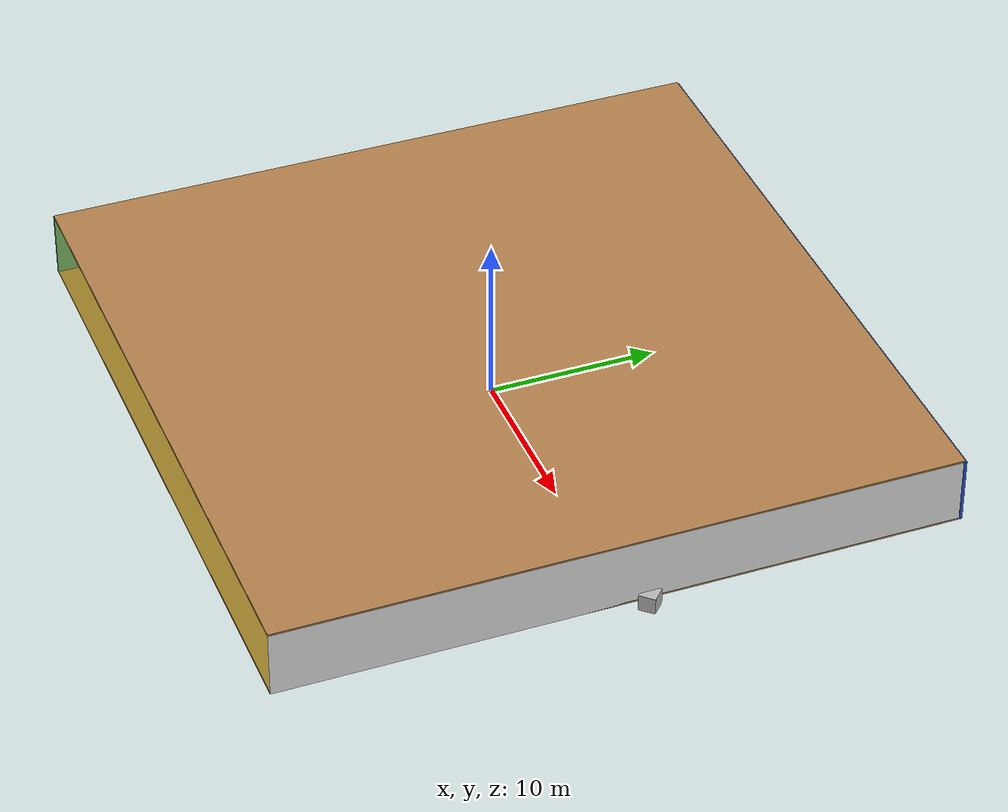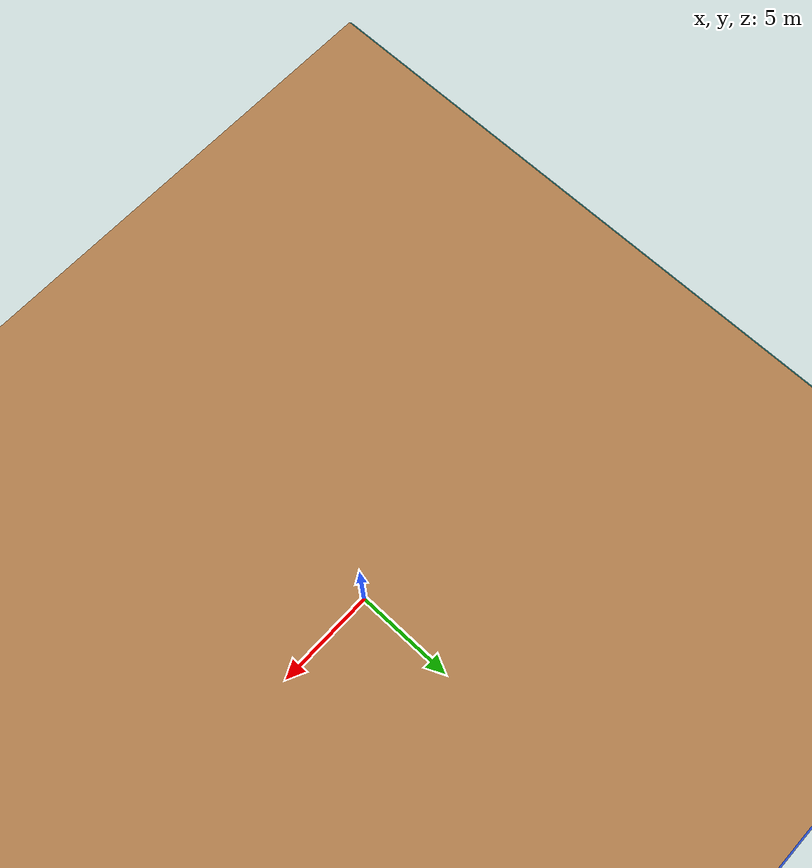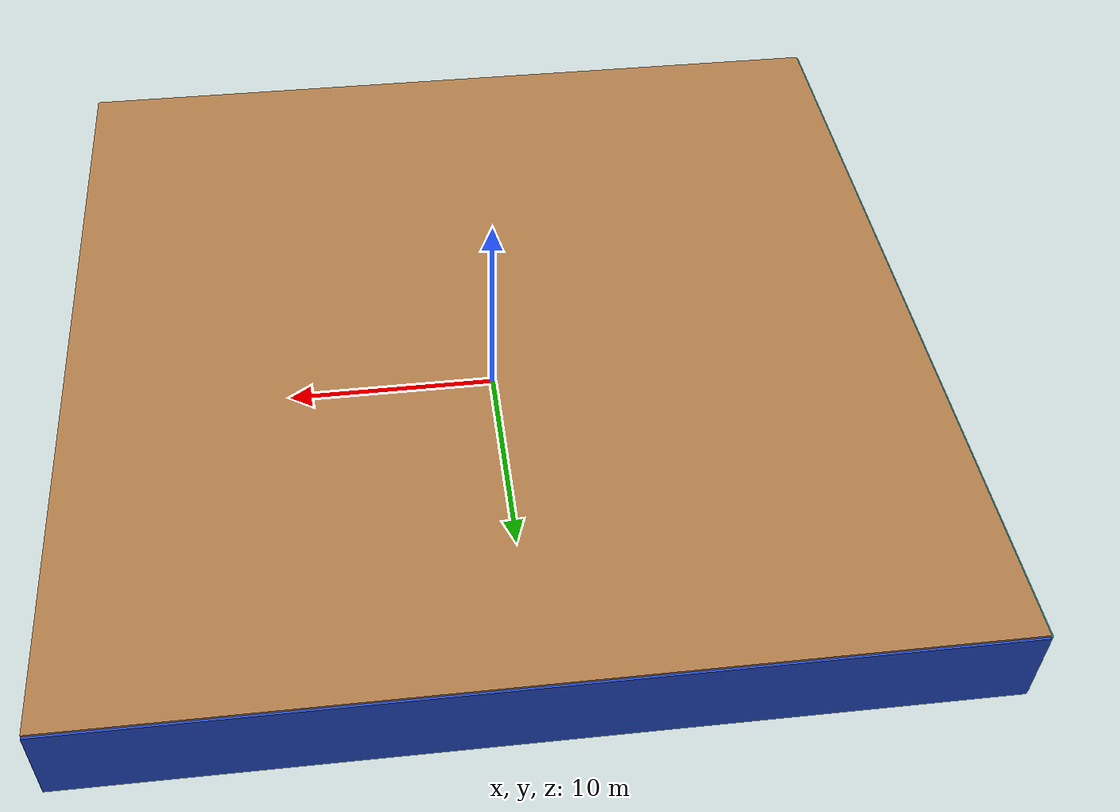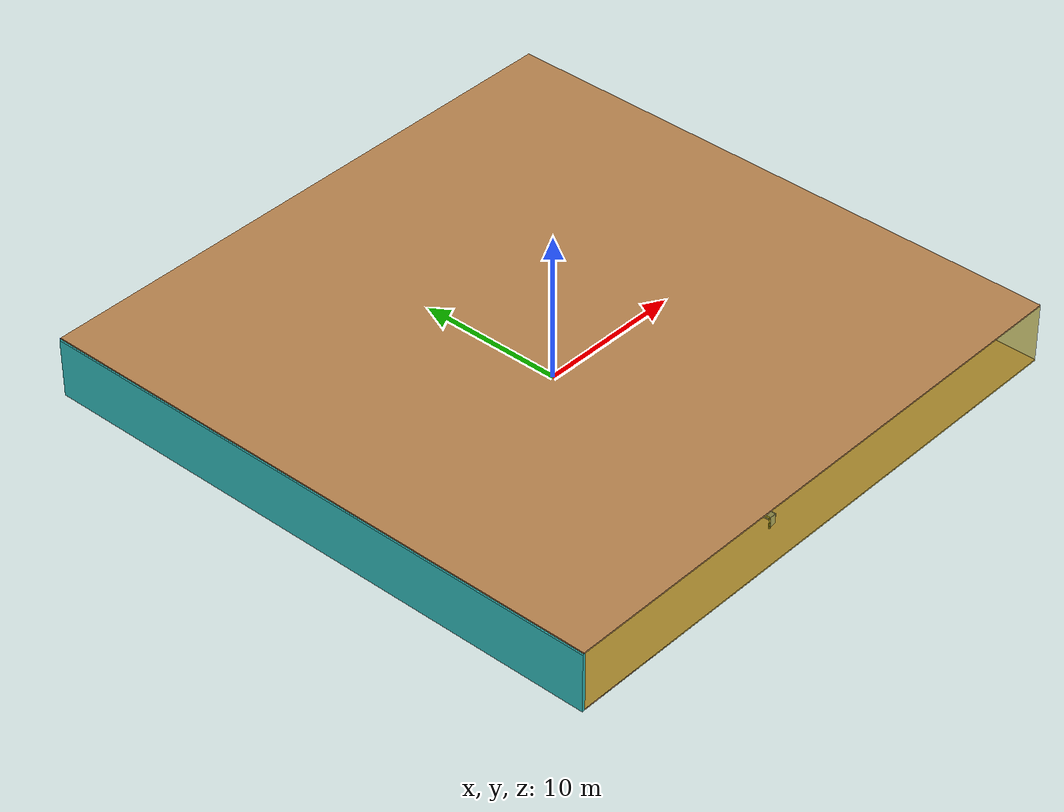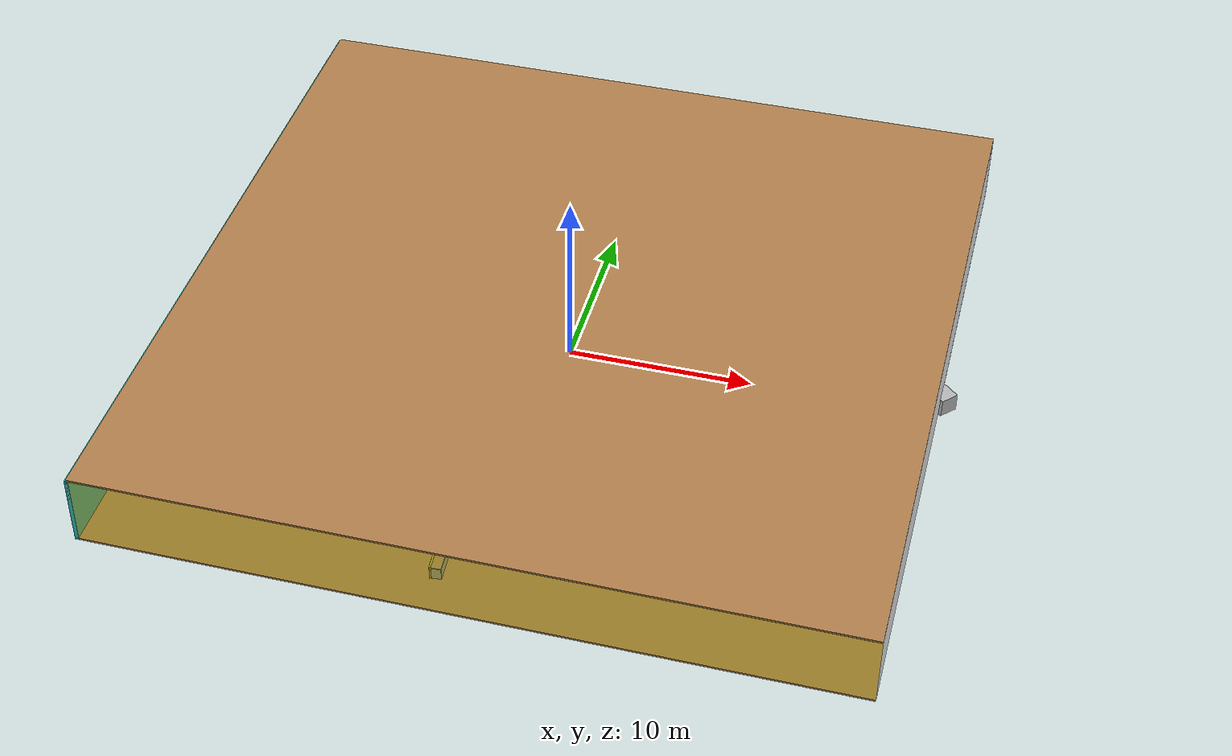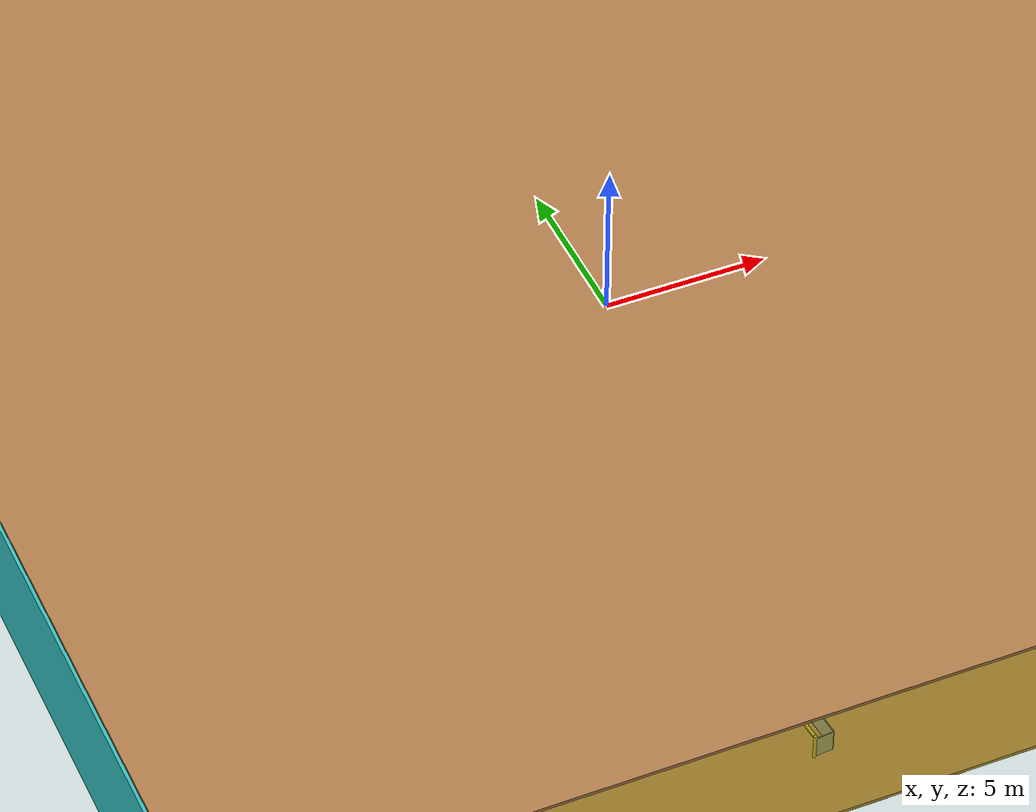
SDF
<sdf version="1.4">
 <world name="default">
  <physics type="ode">
   <max_step_size>0.001</max_step_size>
   <real_time_factor>1</real_time_factor>
   <real_time_update_rate>1000</real_time_update_rate>
   <gravity>0 0 -9.8</gravity>
  </physics>
  <scene><ambient>0.4 0.4 0.4 1</ambient><background>0.7 0.7 0.7 1</background><shadows>1</shadows></scene>
  <model name="Surrounding">
   <static>1</static>
   <link name="Ceiling">
    <collision name="Ceiling_Collision"><geometry><box><size>40 40 0.1</size></box></geometry></collision>
    <visual name="Ceiling_Visual">
     <geometry><box><size>40 40 0.1</size></box></geometry>
     <material>
      <script><uri>file://media/materials/scripts/gazebo.material</uri><name>Gazebo/WoodFloor</name></script>
     </material>
    </visual>
    <pose>0 0 4.05 0 0 0</pose>
   </link>
   <link name="Wall_South">
    <collision name="Wall_South_Collision">
     <geometry><box><size>40 0 4</size></box></geometry>
     <pose>0 0 2 0 -0 0</pose>
    </collision>
    <visual name="Wall_South_Visual">
     <pose>0 0 2 0 -0 0</pose>
     <geometry><box><size>40 0 4</size></box></geometry>
     <material>
      <script>
       <uri>file://media/materials/scripts/gazebo.material</uri>
       <name>Gazebo/YellowTransparent</name>
      </script>
     </material>
    </visual>
    <velocity_decay><linear>0</linear><angular>0</angular></velocity_decay>
    <pose>0 -20 0 0 -0 0</pose>
   </link>
   <link name="Wall_East">
    <collision name="Wall_21_Collision">
     <geometry><box><size>40 0 4</size></box></geometry>
     <pose>0 0 2 0 -0 0</pose>
    </collision>
    <visual name="Wall_21_Visual">
     <pose>0 0 2 0 -0 0</pose>
     <geometry><box><size>40 0 4</size></box></geometry>
     <material>
      <script><uri>file://media/materials/scripts/gazebo.material</uri><name>Gazebo/WhiteGlow</name></script>
     </material>
    </visual>
    <velocity_decay><linear>0</linear><angular>0</angular></velocity_decay>
    <pose>20 0 0 0 -0 1.5708</pose>
   </link>
   <link name="Wall_North">
    <collision name="Wall_22_Collision">
     <geometry><box><size>40 0.2 4</size></box></geometry>
     <pose>0 0 2 0 -0 0</pose>
    </collision>
    <visual name="Wall_22_Visual">
     <pose>0 0 2 0 -0 0</pose>
     <geometry><box><size>40 0.2 4</size></box></geometry>
     <material>
      <script><uri>file://media/materials/scripts/gazebo.material</uri><name>Gazebo/BlueGlow</name></script>
     </material>
    </visual>
    <velocity_decay><linear>0</linear><angular>0</angular></velocity_decay>
    <pose>0 20 0 0 -0 0</pose>
   </link>
   <link name="Wall_West">
    <collision name="Wall_23_Collision">
     <geometry><box><size>40 0.2 4</size></box></geometry>
     <pose>0 0 2 0 -0 0</pose>
    </collision>
    <visual name="Wall_23_Visual">
     <pose>0 0 2 0 -0 0</pose>
     <geometry><box><size>40 0.2 4</size></box></geometry>
     <material>
      <script><uri>file://media/materials/scripts/gazebo.material</uri><name>Gazebo/Turquoise</name></script>
     </material>
    </visual>
    <velocity_decay><linear>0</linear><angular>0</angular></velocity_decay>
    <pose>-20 0 0 0 0 -1.5708</pose>
   </link>
   <link name="Ground_link">
    <collision name="collision">
     <pose>0 0 .05 0 -0 0</pose>
     <geometry><box><size>40 40 0.1</size></box></geometry>
    </collision>
    <visual name="visual">
     <pose>0 0 .05 0 -0 0</pose>
     <geometry><box><size>40 40 0.1</size></box></geometry>
     <material>
      <script><uri>file://media/materials/scripts/gazebo.material</uri><name>Gazebo/WoodFloor</name></script>
     </material>
    </visual>
   </link>
   <static>1</static>
  </model>
  <spherical_coordinates>
   <surface_model>EARTH_WGS84</surface_model>
   <latitude_deg>0</latitude_deg>
   <longitude_deg>0</longitude_deg>
   <elevation>0</elevation>
   <heading_deg>0</heading_deg>
  </spherical_coordinates>
  <light name="lightball_0" type="diffuse">
   <diffuse>0.8 0.8 0.8 1</diffuse>
   <specular>0.2 0.2 0.2 1</specular>
   <attenuation>
    <range>100</range>
    <constant>0.7</constant>
    <linear>0.01</linear>
    <quadratic>0.001</quadratic>
   </attenuation>
   <direction>-0.5 0.1 -0.9</direction>
   <pose>14.9238066211 13.2291041137 2.82711690338 0 0 0</pose>
  </light>
  <light name="lightball_1" type="diffuse">
   <diffuse>0.8 0.8 0.8 1</diffuse>
   <specular>0.2 0.2 0.2 1</specular>
   <attenuation>
    <range>100</range>
    <constant>0.7</constant>
    <linear>0.01</linear>
    <quadratic>0.001</quadratic>
   </attenuation>
   <direction>-0.5 0.1 -0.9</direction>
   <pose>-9.46135923932 3.19993574305 2.61883731728 0 0 0</pose>
  </light>
  <light name="lightball_2" type="diffuse">
   <diffuse>0.8 0.8 0.8 1</diffuse>
   <specular>0.2 0.2 0.2 1</specular>
   <attenuation>
    <range>100</range>
    <constant>0.7</constant>
    <linear>0.01</linear>
    <quadratic>0.001</quadratic>
   </attenuation>
   <direction>-0.5 0.1 -0.9</direction>
   <pose>-6.37178543142 13.7948380476 3.37311836139 0 0 0</pose>
  </light>
  <light name="lightball_3" type="diffuse">
   <diffuse>0.8 0.8 0.8 1</diffuse>
   <specular>0.2 0.2 0.2 1</specular>
   <attenuation>
    <range>100</range>
    <constant>0.7</constant>
    <linear>0.01</linear>
    <quadratic>0.001</quadratic>
   </attenuation>
   <direction>-0.5 0.1 -0.9</direction>
   <pose>-4.64515456928 12.1334269745 3.30808731115 0 0 0</pose>
  </light>
  <include>
   <uri>model://construction_cone</uri>
   <pose>-13.3287666505 12.7510187754 0 0 0 0.527588717919</pose>
  </include>
  <include>
   <uri>model://robocup_3Dsim_goal</uri>
   <pose>-11.8871308197 -5.43214920453 0 0 0 0.335472872187</pose>
  </include>
  <include><uri>model://table</uri><pose>-12.2065128813 11.956142189 0 0 0 2.33322564555</pose></include>
  <include><uri>model://table</uri><pose>-11.9527567992 18.9228792635 0 0 0 2.67489765238</pose></include>
  <include>
   <uri>model://textured_shapes</uri>
   <pose>-7.94209246824 8.9032380513 0 0 0 2.57134215726</pose>
  </include>
  <include>
   <uri>model://robocup_3Dsim_goal</uri>
   <pose>-9.51616002509 18.934603765 0 0 0 0.811238787912</pose>
  </include>
  <include><uri>model://table</uri><pose>-5.61473294187 -5.44254382625 0 0 0 1.88590614432</pose></include>
  <include>
   <uri>model://robocup_3Dsim_goal</uri>
   <pose>-6.17594047723 -3.33477234645 0 0 0 1.4228681367</pose>
  </include>
  <include><uri>model://cabinet</uri><pose>-5.95310903421 1.14504317965 0 0 0 2.42677848005</pose></include>
  <include>
   <uri>model://robocup_3Dsim_goal</uri>
   <pose>-2.3005155408 -16.965631145 0 0 0 0.0743886852228</pose>
  </include>
  <include>
   <uri>model://construction_cone</uri>
   <pose>-1.64222997856 2.67157719295 0 0 0 2.86221159426</pose>
  </include>
  <include>
   <uri>model://robocup_3Dsim_goal</uri>
   <pose>-0.31917539262 13.3643498193 0 0 0 0.44994834581</pose>
  </include>
  <include>
   <uri>model://textured_shapes</uri>
   <pose>0.666159972945 17.8763090433 0 0 0 2.2765690626</pose>
  </include>
  <include>
   <uri>model://textured_shapes</uri>
   <pose>3.14421931871 -14.4534254018 0 0 0 2.87289181193</pose>
  </include>
  <include>
   <uri>model://construction_cone</uri>
   <pose>7.53903364281 -11.033284213 0 0 0 2.68826985329</pose>
  </include>
  <include><uri>model://cabinet</uri><pose>5.79203693848 1.62086465618 0 0 0 2.02844081838</pose></include>
  <include><uri>model://cabinet</uri><pose>9.45280647505 -14.8165015061 0 0 0 1.80546711554</pose></include>
  <include><uri>model://table</uri><pose>11.7030570561 -13.8082053883 0 0 0 2.18529055687</pose></include>
  <include><uri>model://table</uri><pose>15.9546287429 -9.49070228357 0 0 0 1.37235011669</pose></include>
  <include><uri>model://cabinet</uri><pose>18.6962058946 -5.80684373271 0 0 0 2.53347240529</pose></include>
  <include>
   <uri>model://textured_shapes</uri>
   <pose>19.0920586683 0.336307340769 0 0 0 2.39346090562</pose>
  </include>
  <include><uri>model://cabinet</uri><pose>18.2739313108 5.72792935702 0 0 0 2.43951138346</pose></include>
 </world>
</sdf>

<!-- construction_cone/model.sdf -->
<sdf version="1.5">
  <model name="Construction Cone">
    <link name="link">
      <collision name="collision">
        <geometry>
          <mesh>
            <scale>10 10 10</scale>
            <uri>file://isr-testbed/construction_cone/meshes/construction_cone.dae</uri>
          </mesh>
        </geometry>
      </collision>
      <visual name="visual">
        <geometry>
          <mesh>
            <scale>10 10 10</scale>
            <uri>file://isr-testbed/construction_cone/meshes/construction_cone.dae</uri>
          </mesh>
        </geometry>
      </visual>
    </link>
  </model>
</sdf>

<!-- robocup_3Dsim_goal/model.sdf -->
<sdf version="1.5">
  <model name="robocup_3d_goal">
    <static>true</static>
    <link name="left_post">
      <pose>0 1.05 0.45 0 0 0</pose>
      <collision name="collision">
        <geometry>
          <cylinder>
            <radius>0.05</radius>
            <length>0.9</length>
          </cylinder>
        </geometry>
      </collision>
      <visual name="visual">
        <geometry>
          <cylinder>
            <radius>0.05</radius>
            <length>0.9</length>
          </cylinder>
        </geometry>
        <material>
          <script>
            <uri>file://media/materials/scripts/gazebo.material</uri>
            <name>Gazebo/ZincYellow</name>
          </script>
        </material>
      </visual>
    </link>
    <link name="left_support_horiz_lower">
      <pose>0.30 1.05 0.01 0 0 0</pose>
      <collision name="collision">
        <geometry>
          <box>
            <size>0.50 0.02 0.02</size>
          </box>
        </geometry>
      </collision>
      <visual name="visual">
        <geometry>
          <box>
            <size>0.50 0.02 0.02</size>
          </box>
        </geometry>
        <material>
          <script>
            <uri>file://media/materials/scripts/gazebo.material</uri>
            <name>Gazebo/White</name>
          </script>
        </material>
      </visual>
    </link>
    <link name="left_support_horiz_upper">
      <pose>0.30 1.05 0.79 0 0 0</pose>
      <collision name="collision">
        <geometry>
          <box>
            <size>0.50 0.02 0.02</size>
          </box>
        </geometry>
      </collision>
      <visual name="visual">
        <geometry>
          <box>
            <size>0.50 0.02 0.02</size>
          </box>
        </geometry>
        <material>
          <script>
            <uri>file://media/materials/scripts/gazebo.material</uri>
            <name>Gazebo/White</name>
          </script>
        </material>
      </visual>
    </link>
    <link name="left_support_vertical">
      <pose>0.56 1.05 0.4 0 1.5708 0</pose>
      <collision name="collision">
        <geometry>
          <box>
            <size>0.80 0.02 0.02</size>
          </box>
        </geometry>
      </collision>
      <visual name="visual">
        <geometry>
          <box>
            <size>0.80 0.02 0.02</size>
          </box>
        </geometry>
        <material>
          <script>
            <uri>file://media/materials/scripts/gazebo.material</uri>
            <name>Gazebo/White</name>
          </script>
        </material>
      </visual>
    </link>
    <link name="right_support_horiz_lower">
      <pose>0.30 -1.05 0.01 0 0 0</pose>
      <collision name="collision">
        <geometry>
          <box>
            <size>0.50 0.02 0.02</size>
          </box>
        </geometry>
      </collision>
      <visual name="visual">
        <geometry>
          <box>
            <size>0.50 0.02 0.02</size>
          </box>
        </geometry>
        <material>
          <script>
            <uri>file://media/materials/scripts/gazebo.material</uri>
            <name>Gazebo/White</name>
          </script>
        </material>
      </visual>
    </link>
    <link name="right_support_horiz_upper">
      <pose>0.30 -1.05 0.79 0 0 0</pose>
      <collision name="collision">
        <geometry>
          <box>
            <size>0.50 0.02 0.02</size>
          </box>
        </geometry>
      </collision>
      <visual name="visual">
        <geometry>
          <box>
            <size>0.50 0.02 0.02</size>
          </box>
        </geometry>
        <material>
          <script>
            <uri>file://media/materials/scripts/gazebo.material</uri>
            <name>Gazebo/White</name>
          </script>
        </material>
      </visual>
    </link>
    <link name="right_support_vertical">
      <pose>0.56 -1.05 0.4 0 1.5708 0</pose>
      <collision name="collision">
        <geometry>
          <box>
            <size>0.80 0.02 0.02</size>
          </box>
        </geometry>
      </collision>
      <visual name="visual">
        <geometry>
          <box>
            <size>0.80 0.02 0.02</size>
          </box>
        </geometry>
        <material>
          <script>
            <uri>file://media/materials/scripts/gazebo.material</uri>
            <name>Gazebo/White</name>
          </script>
        </material>
      </visual>
    </link>
    <link name="center_support_horiz_lower">
      <pose>0.56 0 0.01 0 1.5708 0</pose>
      <collision name="collision">
        <geometry>
          <box>
            <size>0.02 2.08 0.02</size>
          </box>
        </geometry>
      </collision>
      <visual name="visual">
        <geometry>
          <box>
            <size>0.02 2.08 0.02</size>
          </box>
        </geometry>
        <material>
          <script>
            <uri>file://media/materials/scripts/gazebo.material</uri>
            <name>Gazebo/White</name>
          </script>
        </material>
      </visual>
    </link>
    <link name="center_support_horiz_upper">
      <pose>0.56 0 0.79 0 1.5708 0</pose>
      <collision name="collision">
        <geometry>
          <box>
            <size>0.02 2.08 0.02</size>
          </box>
        </geometry>
      </collision>
      <visual name="visual">
        <geometry>
          <box>
            <size>0.02 2.08 0.02</size>
          </box>
        </geometry>
        <material>
          <script>
            <uri>file://media/materials/scripts/gazebo.material</uri>
            <name>Gazebo/White</name>
          </script>
        </material>
      </visual>
    </link>
    <link name="right_post">
      <pose>0 -1.05 0.45 0 0 0</pose>
      <collision name="collision">
        <geometry>
          <cylinder>
            <radius>0.05</radius>
            <length>0.9</length>
          </cylinder>
        </geometry>
      </collision>
      <visual name="visual">
        <geometry>
          <cylinder>
            <radius>0.05</radius>
            <length>0.9</length>
          </cylinder>
        </geometry>
        <material>
          <script>
            <uri>file://media/materials/scripts/gazebo.material</uri>
            <name>Gazebo/ZincYellow</name>
          </script>
        </material>
      </visual>
    </link>
    <link name="crossbar">
      <pose>0 0 0.85 1.57 1.57 0</pose>
      <collision name="collision">
        <geometry>
          <cylinder>
            <radius>0.05</radius>
            <length>2.0</length>
          </cylinder>
        </geometry>
      </collision>
      <visual name="visual">
        <geometry>
          <cylinder>
            <radius>0.05</radius>
            <length>2.0</length>
          </cylinder>
        </geometry>
        <material>
          <script>
            <uri>file://media/materials/scripts/gazebo.material</uri>
            <name>Gazebo/ZincYellow</name>
          </script>
        </material>
      </visual>
    </link>
    <link name="center_net">
      <pose>0.56 0 0.40 0 0 0</pose>
      <collision name="collision">
        <geometry>
          <box>
            <size>0.01 2.1 0.80</size>
          </box>
        </geometry>
      </collision>
      <visual name="visual">
        <geometry>
          <box>
            <size>0.01 2.1 0.80</size>
          </box>
        </geometry>
        <material>
          <script>
            <uri>model://../model_source/models/robocup09_spl_field/materials/scripts/</uri>
            <uri>model://../model_source/models/robocup09_spl_field/materials/textures/</uri>
            <name>RoboCup/Net</name>
          </script>
        </material>
      </visual>
    </link>
    <link name="left_net">
      <pose>0.30 1.05 0.40 0 0 0</pose>
      <collision name="collision">
        <geometry>
          <box>
            <size>0.50 0.01 0.76</size>
          </box>
        </geometry>
      </collision>
      <visual name="visual">
        <geometry>
          <box>
            <size>0.50 0.01 0.76</size>
          </box>
        </geometry>
        <material>
          <script>
            <uri>model://../model_source/models/robocup09_spl_field/materials/scripts/</uri>
            <uri>model://../model_source/models/robocup09_spl_field/materials/textures/</uri>
            <name>RoboCup/Net</name>
          </script>
        </material>
      </visual>
    </link>
    <link name="right_net">
      <pose>0.30 -1.05 0.40 0 0 0</pose>
      <collision name="collision">
        <geometry>
          <box>
            <size>0.50 0.01 0.76</size>
          </box>
        </geometry>
      </collision>
      <visual name="visual">
        <geometry>
          <box>
            <size>0.50 0.01 0.76</size>
          </box>
        </geometry>
        <material>
          <script>
            <uri>model://../model_source/models/robocup09_spl_field/materials/scripts/</uri>
            <uri>model://../model_source/models/robocup09_spl_field/materials/textures/</uri>
            <name>RoboCup/Net</name>
          </script>
        </material>
      </visual>
    </link>
  </model>
</sdf>

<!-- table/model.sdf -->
<sdf version="1.5">
  <model name="table">
    <static>true</static>
    <link name="link">
      <collision name="surface">
        <pose>0 0 1.0 0 0 0</pose>
        <geometry>
          <box>
            <size>1.5 0.8 0.03</size>
          </box>
        </geometry>
        <surface>
          <friction>
            <ode>
              <mu>0.6</mu>
              <mu2>0.6</mu2>
            </ode>
          </friction>
        </surface>
      </collision>
      <visual name="visual1">
        <pose>0 0 1.0 0 0 0</pose>
        <geometry>
          <box>
            <size>1.5 0.8 0.03</size>
          </box>
        </geometry>
        <material>
          <script>
            <uri>model://media/materials/scripts/gazebo.material</uri>
            <name>Gazebo/Wood</name>
          </script>
        </material>
      </visual>
      <collision name="front_left_leg">
        <pose>0.68 0.38 0.5 0 0 0</pose>
        <geometry>
          <cylinder>
            <radius>0.02</radius>
            <length>1.0</length>
          </cylinder>
        </geometry>
      </collision>
      <visual name="front_left_leg">
        <pose>0.68 0.38 0.5 0 0 0</pose>
        <geometry>
          <cylinder>
            <radius>0.02</radius>
            <length>1.0</length>
          </cylinder>
        </geometry>
        <material>
          <script>
            <uri>model://media/materials/scripts/gazebo.material</uri>
            <name>Gazebo/Grey</name>
          </script>
        </material>
      </visual>
      <collision name="front_right_leg">
        <pose>0.68 -0.38 0.5 0 0 0</pose>
        <geometry>
          <cylinder>
            <radius>0.02</radius>
            <length>1.0</length>
          </cylinder>
        </geometry>
      </collision>
      <visual name="front_right_leg">
        <pose>0.68 -0.38 0.5 0 0 0</pose>
        <geometry>
          <cylinder>
            <radius>0.02</radius>
            <length>1.0</length>
          </cylinder>
        </geometry>
        <material>
          <script>
            <uri>model://media/materials/scripts/gazebo.material</uri>
            <name>Gazebo/Grey</name>
          </script>
        </material>
      </visual>
      <collision name="back_right_leg">
        <pose>-0.68 -0.38 0.5 0 0 0</pose>
        <geometry>
          <cylinder>
            <radius>0.02</radius>
            <length>1.0</length>
          </cylinder>
        </geometry>
      </collision>
      <visual name="back_right_leg">
        <pose>-0.68 -0.38 0.5 0 0 0</pose>
        <geometry>
          <cylinder>
            <radius>0.02</radius>
            <length>1.0</length>
          </cylinder>
        </geometry>
        <material>
          <script>
            <uri>model://media/materials/scripts/gazebo.material</uri>
            <name>Gazebo/Grey</name>
          </script>
        </material>
      </visual>
      <collision name="back_left_leg">
        <pose>-0.68 0.38 0.5 0 0 0</pose>
        <geometry>
          <cylinder>
            <radius>0.02</radius>
            <length>1.0</length>
          </cylinder>
        </geometry>
      </collision>
      <visual name="back_left_leg">
        <pose>-0.68 0.38 0.5 0 0 0</pose>
        <geometry>
          <cylinder>
            <radius>0.02</radius>
            <length>1.0</length>
          </cylinder>
        </geometry>
        <material>
          <script>
            <uri>model://media/materials/scripts/gazebo.material</uri>
            <name>Gazebo/Grey</name>
          </script>
        </material>
      </visual>
    </link>
  </model>
</sdf>

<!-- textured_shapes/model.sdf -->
<sdf version="1.6">
  <model name="textured_shapes">
    <pose>0 0 0.5 0 0 0</pose>
    <link name="box">
      <pose>0 -1.5 0 0 0 0</pose>
      <collision name="collision">
        <geometry>
          <box>
            <size>1 1 1</size>
          </box>
        </geometry>
      </collision>
      <visual name="visual">
        <geometry>
          <box>
            <size>1 1 1</size>
          </box>
        </geometry>
        <material>
          <script>
            <uri>model://../model_source/models/textured_shapes/materials/scripts</uri>
            <uri>model://../model_source/models/textured_shapes/materials/textures</uri>
            <name>TexturedShape/Squares</name>
          </script>
        </material>
      </visual>
    </link>
    <link name="sphere">
      <collision name="collision">
        <geometry>
          <sphere>
            <radius>0.5</radius>
          </sphere>
        </geometry>
      </collision>
      <visual name="visual">
        <geometry>
          <sphere>
            <radius>0.5</radius>
          </sphere>
        </geometry>
        <material>
          <script>
            <uri>model://../model_source/models/textured_shapes/materials/scripts</uri>
            <uri>model://../model_source/models/textured_shapes/materials/textures</uri>
            <name>TexturedShape/Squares</name>
          </script>
        </material>
      </visual>
    </link>
    <link name="cylinder">
      <pose>0 1.5 0 0 0 0</pose>
      <collision name="collision">
        <geometry>
          <cylinder>
            <radius>0.5</radius>
            <length>1</length>
          </cylinder>
        </geometry>
      </collision>
      <visual name="visual">
        <geometry>
          <cylinder>
            <radius>0.5</radius>
            <length>1</length>
          </cylinder>
        </geometry>
        <material>
          <script>
            <uri>model://../model_source/models/textured_shapes/materials/scripts</uri>
            <uri>model://../model_source/models/textured_shapes/materials/textures</uri>
            <name>TexturedShape/Squares</name>
          </script>
        </material>
      </visual>
    </link>
  </model>
</sdf>

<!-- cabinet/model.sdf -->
<sdf version="1.5">
  <model name="cabinet">
    <static>true</static>
    <link name="cabinet_bottom_plate">
      <inertial>
        <pose>0 0 -1 0 0 0</pose>
        <inertia>
          <ixx>2.050000</ixx>
          <ixy>0</ixy>
          <ixz>0</ixz>
          <iyy>2.050000</iyy>
          <iyz>0</iyz>
          <izz>2.050000</izz>
        </inertia>
        <mass>25.000000</mass>
      </inertial>
      <collision name="cabinet_bottom_plate_geom">
        <pose>0 0 0.010000 0 0 0</pose>
        <geometry>
          <box>
            <size>0.450000 0.450000 0.020000</size>
          </box>
        </geometry>
      </collision>
      <visual name="cabinet_bottom_plate_geom_visual">
        <pose>0 0 0.010000 0 0 0</pose>
        <geometry>
          <box>
            <size>0.450000 0.450000 0.020000</size>
          </box>
        </geometry>
        <material>
          <script>
            <uri>model://media/materials/scripts/gazebo.material</uri>
            <name>Gazebo/Wood</name>
          </script>
        </material>
      </visual>
      <collision name="cabinet_bottom_plate_geom_cabinet_back_plate">
        <pose>0.235000 0 0.510000 0 0 0</pose>
        <geometry>
          <box>
            <size>0.020000 0.450000 1.020000</size>
          </box>
        </geometry>
      </collision>
      <visual name="cabinet_bottom_plate_geom_cabinet_back_plate_visual">
        <pose>0.235000 0 0.510000 0 0 0</pose>
        <geometry>
          <box>
            <size>0.020000 0.450000 1.020000</size>
          </box>
        </geometry>
        <material>
          <script>
            <uri>model://media/materials/scripts/gazebo.material</uri>
            <name>Gazebo/Wood</name>
          </script>
        </material>
      </visual>
      <collision name="cabinet_bottom_plate_geom_cabinet_left_plate">
        <pose>0 0.235000 0.510000 0 0 0</pose>
        <geometry>
          <box>
            <size>0.450000 0.020000 1.020000</size>
          </box>
        </geometry>
      </collision>
      <visual name="cabinet_bottom_plate_geom_cabinet_left_plate_visual">
        <pose>0 0.235000 0.510000 0 0 0</pose>
        <geometry>
          <box>
            <size>0.450000 0.020000 1.020000</size>
          </box>
        </geometry>
        <material>
          <script>
            <uri>model://media/materials/scripts/gazebo.material</uri>
            <name>Gazebo/Wood</name>
          </script>
        </material>
      </visual>
      <collision name="cabinet_bottom_plate_geom_cabinet_middle_plate">
        <pose>0 0 0.510000 0 0 0</pose>
        <geometry>
          <box>
            <size>0.450000 0.450000 0.020000</size>
          </box>
        </geometry>
      </collision>
      <visual name="cabinet_bottom_plate_geom_cabinet_middle_plate_visual">
        <pose>0 0 0.510000 0 0 0</pose>
        <geometry>
          <box>
            <size>0.450000 0.450000 0.020000</size>
          </box>
        </geometry>
        <material>
          <script>
            <uri>model://media/materials/scripts/gazebo.material</uri>
            <name>Gazebo/Wood</name>
          </script>
        </material>
      </visual>
      <collision name="cabinet_bottom_plate_geom_cabinet_right_plate">
        <pose>0 -0.235000 0.510000 0 0 0</pose>
        <geometry>
          <box>
            <size>0.450000 0.020000 1.020000</size>
          </box>
        </geometry>
      </collision>
      <visual name="cabinet_bottom_plate_geom_cabinet_right_plate_visual">
        <pose>0 -0.235000 0.510000 0 0 0</pose>
        <geometry>
          <box>
            <size>0.450000 0.020000 1.020000</size>
          </box>
        </geometry>
        <material>
          <script>
            <uri>model://media/materials/scripts/gazebo.material</uri>
            <name>Gazebo/Wood</name>
          </script>
        </material>
      </visual>
      <collision name="cabinet_bottom_plate_geom_cabinet_top_plate">
        <pose>0 0 1.010000 0 0 0</pose>
        <geometry>
          <box>
            <size>0.450000 0.450000 0.020000</size>
          </box>
        </geometry>
      </collision>
      <visual name="cabinet_bottom_plate_geom_cabinet_top_plate_visual">
        <pose>0 0 1.010000 0 0 0</pose>
        <geometry>
          <box>
            <size>0.450000 0.450000 0.020000</size>
          </box>
        </geometry>
        <material>
          <script>
            <uri>model://media/materials/scripts/gazebo.material</uri>
            <name>Gazebo/Wood</name>
          </script>
        </material>
      </visual>
    </link>
  </model>
</sdf>
